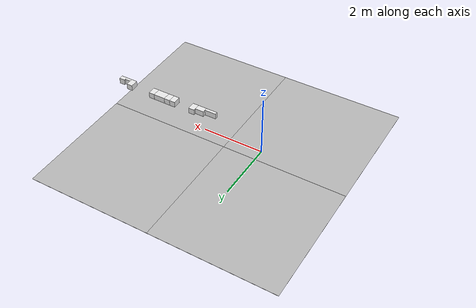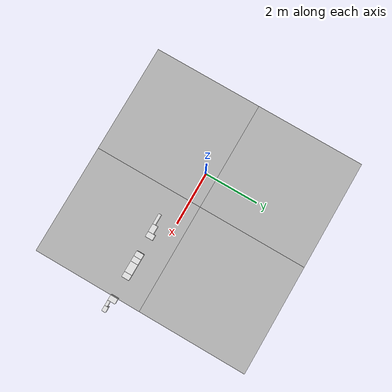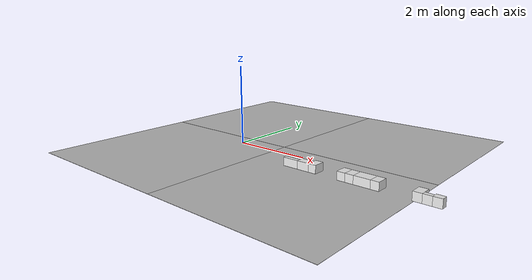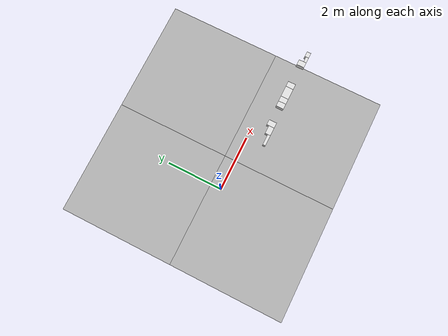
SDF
<sdf version="1.6">
 <world name="default">
  <model name="Tile/0-0">
   <static>1</static>
   <link name="link">
    <collision name="collision">
     <geometry><plane><normal>0 0 1</normal><size>4.096 4.096</size></plane></geometry>
     <surface><friction><ode><mu>100</mu><mu2>50</mu2></ode></friction></surface>
    </collision>
    <visual name="visual">
     <cast_shadows>0</cast_shadows>
     <geometry><plane><normal>0 0 1</normal><size>4.096 4.096</size></plane></geometry>
     <material>
      <script>
       <uri>file://materials/scripts</uri>
       <uri>file://materials/textures</uri>
       <name>Tile/aa44efc093d15b0d016b671cb8dad8b9b5925cd42bc6b331ef31decf4ba6863e</name>
      </script>
     </material>
    </visual>
   </link>
   <pose>-0.952 -1.6520000000000001 0 0 -0 0</pose>
  </model>
  <model name="Tile/0-1">
   <static>1</static>
   <link name="link">
    <collision name="collision">
     <geometry><plane><normal>0 0 1</normal><size>4.096 4.096</size></plane></geometry>
     <surface><friction><ode><mu>100</mu><mu2>50</mu2></ode></friction></surface>
    </collision>
    <visual name="visual">
     <cast_shadows>0</cast_shadows>
     <geometry><plane><normal>0 0 1</normal><size>4.096 4.096</size></plane></geometry>
     <material>
      <script>
       <uri>file://materials/scripts</uri>
       <uri>file://materials/textures</uri>
       <name>Tile/6681b896b1587d54cb69aadeb5fb7247b4d6d500490292053e67105ac88ca889</name>
      </script>
     </material>
    </visual>
   </link>
   <pose>-0.952 2.444 0 0 -0 0</pose>
  </model>
  <model name="Tile/1-0">
   <static>1</static>
   <link name="link">
    <collision name="collision">
     <geometry><plane><normal>0 0 1</normal><size>4.096 4.096</size></plane></geometry>
     <surface><friction><ode><mu>100</mu><mu2>50</mu2></ode></friction></surface>
    </collision>
    <visual name="visual">
     <cast_shadows>0</cast_shadows>
     <geometry><plane><normal>0 0 1</normal><size>4.096 4.096</size></plane></geometry>
     <material>
      <script>
       <uri>file://materials/scripts</uri>
       <uri>file://materials/textures</uri>
       <name>Tile/891372417e063aec24b9824e71e951779bd218e1d17436f89fe8a076b94469e1</name>
      </script>
     </material>
    </visual>
   </link>
   <pose>3.144 -1.6520000000000001 0 0 -0 0</pose>
  </model>
  <model name="Tile/1-1">
   <static>1</static>
   <link name="link">
    <collision name="collision">
     <geometry><plane><normal>0 0 1</normal><size>4.096 4.096</size></plane></geometry>
     <surface><friction><ode><mu>100</mu><mu2>50</mu2></ode></friction></surface>
    </collision>
    <visual name="visual">
     <cast_shadows>0</cast_shadows>
     <geometry><plane><normal>0 0 1</normal><size>4.096 4.096</size></plane></geometry>
     <material>
      <script>
       <uri>file://materials/scripts</uri>
       <uri>file://materials/textures</uri>
       <name>Tile/13957a6de1f2afce18d7f1f64dacc2f21295e26ccf498256b0e1a51002cd5706</name>
      </script>
     </material>
    </visual>
   </link>
   <pose>3.144 2.444 0 0 -0 0</pose>
  </model>
  <model name="Obstacle/-5/0">
   <pose>2.2 -0.6499999999999999 0.1 0 0 -0.0</pose>
   <link name="link">
    <inertial>
     <mass>10</mass>
     <inertia>
      <ixx>0.166667</ixx>
      <ixy>0</ixy>
      <ixz>0</ixz>
      <iyy>0.166667</iyy>
      <iyz>0</iyz>
      <izz>0.166667</izz>
     </inertia>
    </inertial>
    <collision name="collision"><geometry><box><size>0.4 0.1 0.2</size></box></geometry></collision>
    <visual name="visual">
     <geometry><box><size>0.4 0.1 0.2</size></box></geometry>
     <material>
      <script><name>Gazebo/White</name><uri>file://media/materials/scripts/gazebo.material</uri></script>
     </material>
    </visual>
   </link>
  </model>
  <model name="Obstacle/-9/0">
   <pose>2.55 -0.6 0.1 0 0 -0.0</pose>
   <link name="link">
    <inertial>
     <mass>10</mass>
     <inertia>
      <ixx>0.166667</ixx>
      <ixy>0</ixy>
      <ixz>0</ixz>
      <iyy>0.166667</iyy>
      <iyz>0</iyz>
      <izz>0.166667</izz>
     </inertia>
    </inertial>
    <collision name="collision"><geometry><box><size>0.3 0.2 0.2</size></box></geometry></collision>
    <visual name="visual">
     <geometry><box><size>0.3 0.2 0.2</size></box></geometry>
     <material>
      <script><name>Gazebo/White</name><uri>file://media/materials/scripts/gazebo.material</uri></script>
     </material>
    </visual>
   </link>
  </model>
  <model name="Obstacle/-13/0">
   <pose>2.8 -0.5599999999999999 0.1 0 0 -0.0</pose>
   <link name="link">
    <inertial>
     <mass>10</mass>
     <inertia>
      <ixx>0.166667</ixx>
      <ixy>0</ixy>
      <ixz>0</ixz>
      <iyy>0.166667</iyy>
      <iyz>0</iyz>
      <izz>0.166667</izz>
     </inertia>
    </inertial>
    <collision name="collision"><geometry><box><size>0.2 0.28 0.2</size></box></geometry></collision>
    <visual name="visual">
     <geometry><box><size>0.2 0.28 0.2</size></box></geometry>
     <material>
      <script><name>Gazebo/White</name><uri>file://media/materials/scripts/gazebo.material</uri></script>
     </material>
    </visual>
   </link>
  </model>
  <model name="Obstacle/-20/0">
   <pose>3.5500000000000003 -0.5599999999999999 0.1 0 0 -0.0</pose>
   <link name="link">
    <inertial>
     <mass>10</mass>
     <inertia>
      <ixx>0.166667</ixx>
      <ixy>0</ixy>
      <ixz>0</ixz>
      <iyy>0.166667</iyy>
      <iyz>0</iyz>
      <izz>0.166667</izz>
     </inertia>
    </inertial>
    <collision name="collision"><geometry><box><size>0.2 0.28 0.2</size></box></geometry></collision>
    <visual name="visual">
     <geometry><box><size>0.2 0.28 0.2</size></box></geometry>
     <material>
      <script><name>Gazebo/White</name><uri>file://media/materials/scripts/gazebo.material</uri></script>
     </material>
    </visual>
   </link>
  </model>
  <model name="Obstacle/-24/0">
   <pose>3.7500000000000004 -0.5599999999999999 0.1 0 0 -0.0</pose>
   <link name="link">
    <inertial>
     <mass>10</mass>
     <inertia>
      <ixx>0.166667</ixx>
      <ixy>0</ixy>
      <ixz>0</ixz>
      <iyy>0.166667</iyy>
      <iyz>0</iyz>
      <izz>0.166667</izz>
     </inertia>
    </inertial>
    <collision name="collision"><geometry><box><size>0.2 0.28 0.2</size></box></geometry></collision>
    <visual name="visual">
     <geometry><box><size>0.2 0.28 0.2</size></box></geometry>
     <material>
      <script><name>Gazebo/White</name><uri>file://media/materials/scripts/gazebo.material</uri></script>
     </material>
    </visual>
   </link>
  </model>
  <model name="Obstacle/-28/0">
   <pose>4.050000000000001 -0.5599999999999999 0.1 0 0 -0.0</pose>
   <link name="link">
    <inertial>
     <mass>10</mass>
     <inertia>
      <ixx>0.166667</ixx>
      <ixy>0</ixy>
      <ixz>0</ixz>
      <iyy>0.166667</iyy>
      <iyz>0</iyz>
      <izz>0.166667</izz>
     </inertia>
    </inertial>
    <collision name="collision"><geometry><box><size>0.4 0.28 0.2</size></box></geometry></collision>
    <visual name="visual">
     <geometry><box><size>0.4 0.28 0.2</size></box></geometry>
     <material>
      <script><name>Gazebo/White</name><uri>file://media/materials/scripts/gazebo.material</uri></script>
     </material>
    </visual>
   </link>
  </model>
  <model name="Obstacle/-32/0">
   <pose>4.3500000000000005 -0.5599999999999999 0.1 0 0 -0.0</pose>
   <link name="link">
    <inertial>
     <mass>10</mass>
     <inertia>
      <ixx>0.166667</ixx>
      <ixy>0</ixy>
      <ixz>0</ixz>
      <iyy>0.166667</iyy>
      <iyz>0</iyz>
      <izz>0.166667</izz>
     </inertia>
    </inertial>
    <collision name="collision"><geometry><box><size>0.2 0.28 0.2</size></box></geometry></collision>
    <visual name="visual">
     <geometry><box><size>0.2 0.28 0.2</size></box></geometry>
     <material>
      <script><name>Gazebo/White</name><uri>file://media/materials/scripts/gazebo.material</uri></script>
     </material>
    </visual>
   </link>
  </model>
  <model name="Obstacle/-39/0">
   <pose>5.250000000000001 -0.5599999999999999 0.1 0 0 -0.0</pose>
   <link name="link">
    <inertial>
     <mass>10</mass>
     <inertia>
      <ixx>0.166667</ixx>
      <ixy>0</ixy>
      <ixz>0</ixz>
      <iyy>0.166667</iyy>
      <iyz>0</iyz>
      <izz>0.166667</izz>
     </inertia>
    </inertial>
    <collision name="collision"><geometry><box><size>0.2 0.28 0.2</size></box></geometry></collision>
    <visual name="visual">
     <geometry><box><size>0.2 0.28 0.2</size></box></geometry>
     <material>
      <script><name>Gazebo/White</name><uri>file://media/materials/scripts/gazebo.material</uri></script>
     </material>
    </visual>
   </link>
  </model>
  <model name="Obstacle/-43/0">
   <pose>5.450000000000001 -0.6499999999999999 0.1 0 0 -0.0</pose>
   <link name="link">
    <inertial>
     <mass>10</mass>
     <inertia>
      <ixx>0.166667</ixx>
      <ixy>0</ixy>
      <ixz>0</ixz>
      <iyy>0.166667</iyy>
      <iyz>0</iyz>
      <izz>0.166667</izz>
     </inertia>
    </inertial>
    <collision name="collision"><geometry><box><size>0.2 0.1 0.2</size></box></geometry></collision>
    <visual name="visual">
     <geometry><box><size>0.2 0.1 0.2</size></box></geometry>
     <material>
      <script><name>Gazebo/White</name><uri>file://media/materials/scripts/gazebo.material</uri></script>
     </material>
    </visual>
   </link>
  </model>
  <model name="Obstacle/-47/0">
   <pose>5.650000000000001 -0.625 0.1 0 0 -0.0</pose>
   <link name="link">
    <inertial>
     <mass>10</mass>
     <inertia>
      <ixx>0.166667</ixx>
      <ixy>0</ixy>
      <ixz>0</ixz>
      <iyy>0.166667</iyy>
      <iyz>0</iyz>
      <izz>0.166667</izz>
     </inertia>
    </inertial>
    <collision name="collision"><geometry><box><size>0.2 0.15 0.2</size></box></geometry></collision>
    <visual name="visual">
     <geometry><box><size>0.2 0.15 0.2</size></box></geometry>
     <material>
      <script><name>Gazebo/White</name><uri>file://media/materials/scripts/gazebo.material</uri></script>
     </material>
    </visual>
   </link>
  </model>
 </world>
</sdf>
